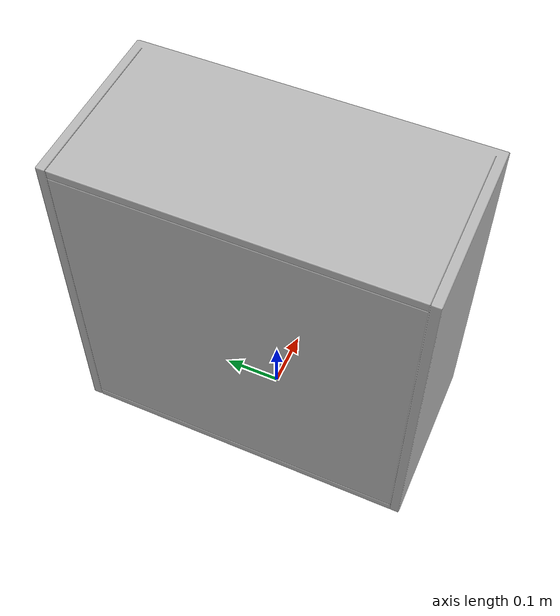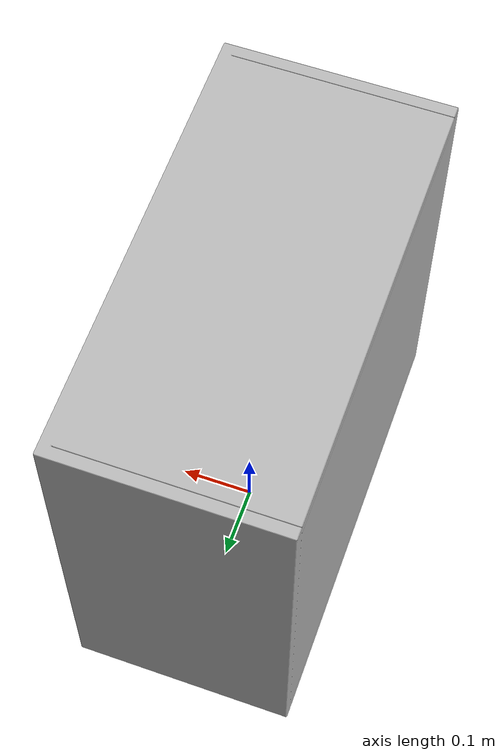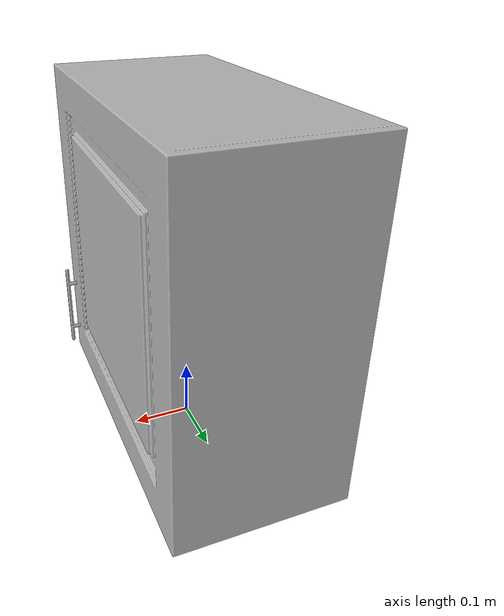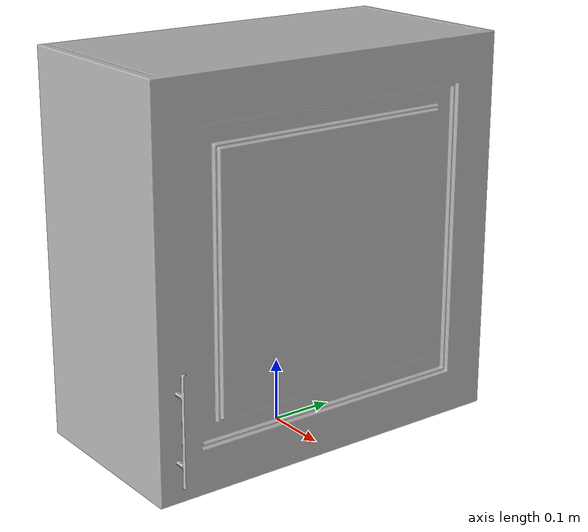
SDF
<?xml version='1.0'?>
<sdf version='1.4'>
  <model name='667'>
    <pose>0 0 0 0 0 0</pose>
    <static>true</static>
    <link name='link'>
      <collision name='collision'>
        <pose>0 0 0 0 0 0</pose>
        <geometry>
          <box>
            <size>0.320464 0.6 2</size>
          </box>
        </geometry>
      </collision>
      <visual name='visual'>
        <pose>0 0 0 0 0 0</pose>
        <geometry>
          <mesh><uri>model://667/667.dae</uri></mesh>
        </geometry>
      </visual>
    </link>
  </model>
</sdf>
